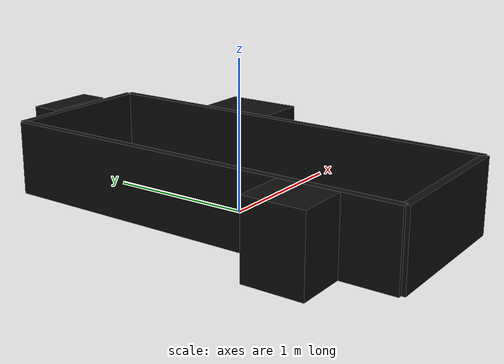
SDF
<?xml version="1.0"?>
<sdf version="1.6">
  <model name="warehouse_lidar_blocker_short">
    <static>true</static>
    <link name="link">
      <!-- Keep the shelf footprint lidar-visible, but put the distinguishing
           features on the OUTSIDE of the rack so they are actually visible to
           the scanner from the aisle. -->
      <collision name="x_min_lidar_rail_collision">
        <pose>-0.525 0 0.25 0 0 0</pose>
        <geometry>
          <box>
            <size>0.05 2.80 0.50</size>
          </box>
        </geometry>
      </collision>
      <collision name="x_max_lidar_rail_collision">
        <pose>0.525 0 0.25 0 0 0</pose>
        <geometry>
          <box>
            <size>0.05 2.80 0.50</size>
          </box>
        </geometry>
      </collision>
      <collision name="y_min_lidar_rail_collision">
        <pose>0 -1.40 0.25 0 0 0</pose>
        <geometry>
          <box>
            <size>1.05 0.05 0.50</size>
          </box>
        </geometry>
      </collision>
      <collision name="y_max_lidar_rail_collision">
        <pose>0 1.40 0.25 0 0 0</pose>
        <geometry>
          <box>
            <size>1.05 0.05 0.50</size>
          </box>
        </geometry>
      </collision>
      <collision name="west_marker_collision">
        <pose>-0.72 -0.84 0.25 0 0 0</pose>
        <geometry>
          <box>
            <size>0.34 0.40 0.50</size>
          </box>
        </geometry>
      </collision>
      <collision name="east_marker_collision">
        <pose>0.72 0.42 0.25 0 0 0</pose>
        <geometry>
          <box>
            <size>0.34 0.52 0.50</size>
          </box>
        </geometry>
      </collision>
      <collision name="north_marker_collision">
        <pose>0.05 1.55 0.25 0 0 0</pose>
        <geometry>
          <box>
            <size>0.48 0.20 0.50</size>
          </box>
        </geometry>
      </collision>
      <visual name="x_min_lidar_rail">
        <pose>-0.525 0 0.25 0 0 0</pose>
        <cast_shadows>false</cast_shadows>
        <geometry>
          <box>
            <size>0.05 2.80 0.50</size>
          </box>
        </geometry>
        <material>
          <ambient>0.03 0.03 0.03 1</ambient>
          <diffuse>0.05 0.05 0.05 1</diffuse>
        </material>
      </visual>
      <visual name="x_max_lidar_rail">
        <pose>0.525 0 0.25 0 0 0</pose>
        <cast_shadows>false</cast_shadows>
        <geometry>
          <box>
            <size>0.05 2.80 0.50</size>
          </box>
        </geometry>
        <material>
          <ambient>0.03 0.03 0.03 1</ambient>
          <diffuse>0.05 0.05 0.05 1</diffuse>
        </material>
      </visual>
      <visual name="y_min_lidar_rail">
        <pose>0 -1.40 0.25 0 0 0</pose>
        <cast_shadows>false</cast_shadows>
        <geometry>
          <box>
            <size>1.05 0.05 0.50</size>
          </box>
        </geometry>
        <material>
          <ambient>0.03 0.03 0.03 1</ambient>
          <diffuse>0.05 0.05 0.05 1</diffuse>
        </material>
      </visual>
      <visual name="y_max_lidar_rail">
        <pose>0 1.40 0.25 0 0 0</pose>
        <cast_shadows>false</cast_shadows>
        <geometry>
          <box>
            <size>1.05 0.05 0.50</size>
          </box>
        </geometry>
        <material>
          <ambient>0.03 0.03 0.03 1</ambient>
          <diffuse>0.05 0.05 0.05 1</diffuse>
        </material>
      </visual>
      <visual name="west_marker">
        <pose>-0.72 -0.84 0.25 0 0 0</pose>
        <cast_shadows>false</cast_shadows>
        <geometry>
          <box>
            <size>0.34 0.40 0.50</size>
          </box>
        </geometry>
        <material>
          <ambient>0.03 0.03 0.03 1</ambient>
          <diffuse>0.05 0.05 0.05 1</diffuse>
        </material>
      </visual>
      <visual name="east_marker">
        <pose>0.72 0.42 0.25 0 0 0</pose>
        <cast_shadows>false</cast_shadows>
        <geometry>
          <box>
            <size>0.34 0.52 0.50</size>
          </box>
        </geometry>
        <material>
          <ambient>0.03 0.03 0.03 1</ambient>
          <diffuse>0.05 0.05 0.05 1</diffuse>
        </material>
      </visual>
      <visual name="north_marker">
        <pose>0.05 1.55 0.25 0 0 0</pose>
        <cast_shadows>false</cast_shadows>
        <geometry>
          <box>
            <size>0.48 0.20 0.50</size>
          </box>
        </geometry>
        <material>
          <ambient>0.03 0.03 0.03 1</ambient>
          <diffuse>0.05 0.05 0.05 1</diffuse>
        </material>
      </visual>
    </link>
  </model>
</sdf>
